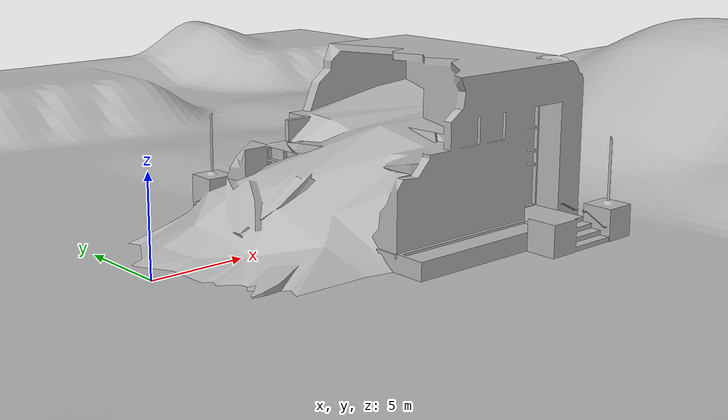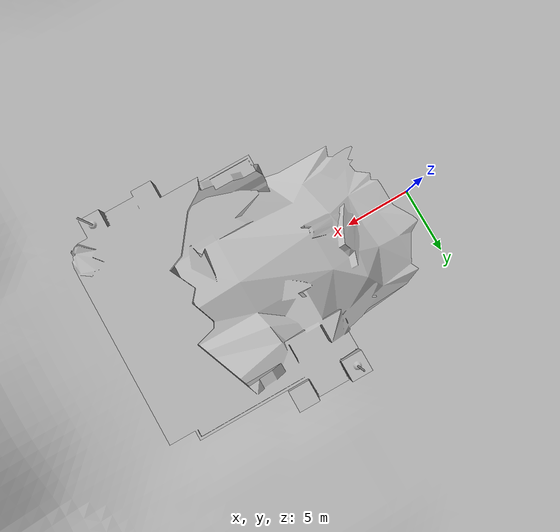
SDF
<?xml version="1.0" ?>
<sdf version="1.5">
  <world name="void">

    <physics name="1ms" type="ignored">
      <max_step_size>0.001</max_step_size>
      <real_time_factor>1.0</real_time_factor>
    </physics>

    <plugin name='gz::sim::systems::Physics' filename='gz-sim-physics-system' />
    <plugin name='gz::sim::systems::UserCommands' filename='gz-sim-user-commands-system' />
    <plugin name='gz::sim::systems::SceneBroadcaster' filename='gz-sim-scene-broadcaster-system' />
    <plugin name='gz::sim::systems::Contact' filename='gz-sim-contact-system' />

    <model name="ground_plane">
      <static>true</static>
      <link name="link">
        <collision name="collision">
          <geometry>
            <plane>
              <normal>0 0 1</normal>
              <size>100 100</size>
            </plane>
          </geometry>
          <surface>
            <friction>
              <ode>
                <mu>100</mu>
                <mu2>50</mu2>
              </ode>
            </friction>
          </surface>
        </collision>
      </link>
    </model>

    <include>
      <uri>https://fuel.gazebosim.org/1.0/OpenRobotics/models/Sun</uri>
    </include>

    <include>
      <uri>model://collapsed_police_station</uri>
      <name>collapsed_police_station</name>
      <pose>11.0 0.0 0.0 0.0 0.0 -1.578</pose>
    </include>

    <include>
      <uri>model://outdoor_terrain</uri>
      <name>outdoor_terrain</name>
      <pose>0.0 0.0 0.0 0.0 0.0 0.0</pose>
    </include>

  </world>
</sdf>

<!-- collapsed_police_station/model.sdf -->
<sdf version="1.6">
  <model name="collapsed_police_station">
    <static>true</static>
    <link name="link">
      <collision name="collision">
        <geometry>
          <mesh>
            <uri>model://../model_source/models/collapsed_police_station/meshes/collapsed_police_station.dae</uri>
          </mesh>
        </geometry>
      </collision>
      <visual name="visual">
        <geometry>
          <mesh>
            <uri>model://../model_source/models/collapsed_police_station/meshes/collapsed_police_station.dae</uri>
          </mesh>
        </geometry>
      </visual>
    </link>
  </model>
</sdf>

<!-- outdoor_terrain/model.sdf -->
<sdf version="1.6">
  <model name="outdoor_terrain">
    <static>true</static>
    <link name="link">
      <collision name="collision">
        <geometry>
          <mesh>
            <uri>model://outdoor_terrain/meshes/terrain.dae</uri>
          </mesh>
        </geometry>
      </collision>
      <visual name="visual">
        <geometry>
          <mesh>
            <uri>model://outdoor_terrain/meshes/terrain.dae</uri>
          </mesh>
        </geometry>
      </visual>
    </link>
  </model>
</sdf>
